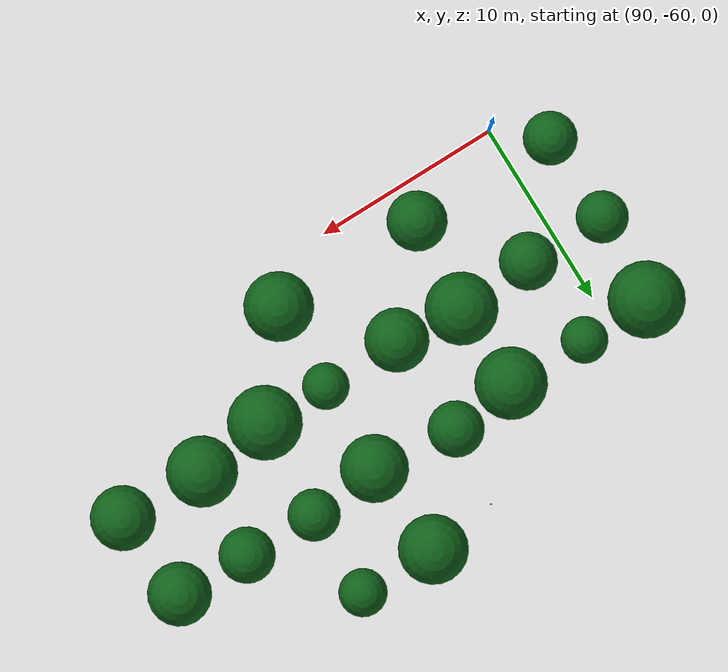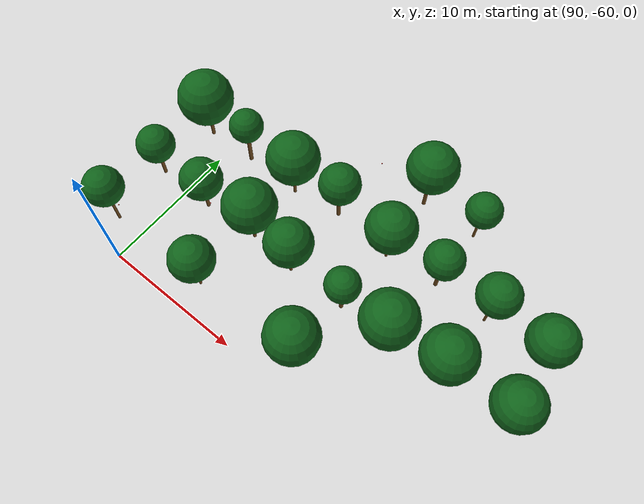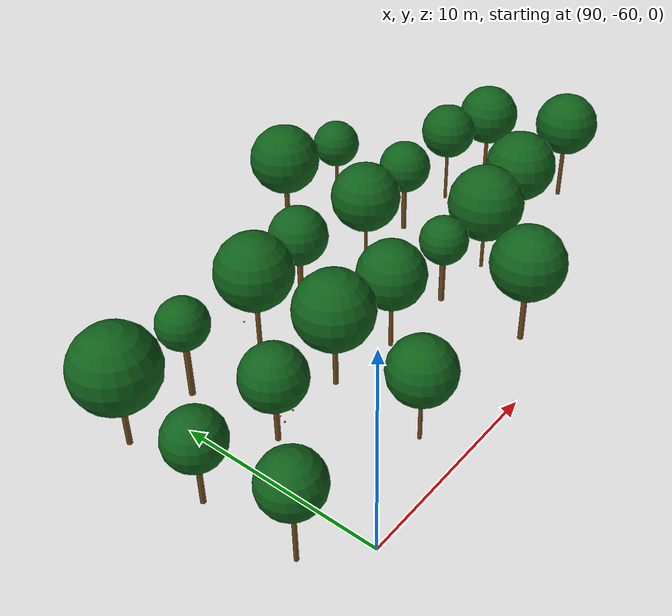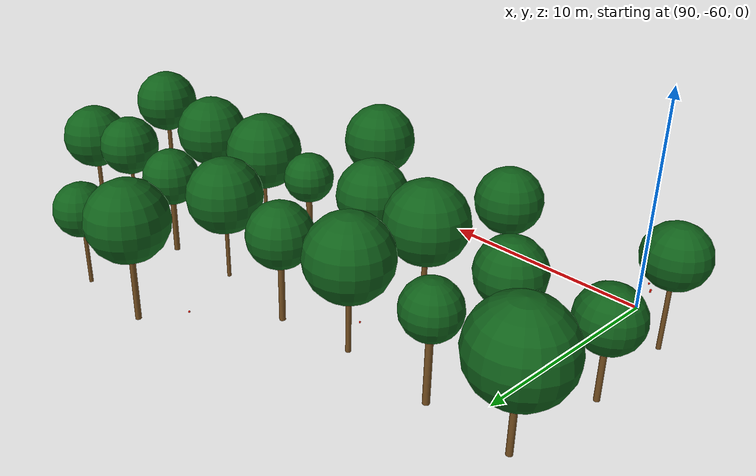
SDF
<sdf version="1.9">
 <world name="cheongsong_orchard">
  <model name="apple_tree_650">
   <static>true</static>
   <pose>87.80 -57.90 0 0 0 0</pose>
   <link name="link">
    <collision name="trunk_col">
     <pose>0 0 1.42 0 0 0</pose>
     <geometry><cylinder><radius>0.100</radius><length>2.84</length></cylinder></geometry>
    </collision>
    <visual name="trunk_vis">
     <pose>0 0 1.42 0 0 0</pose>
     <geometry><cylinder><radius>0.100</radius><length>2.84</length></cylinder></geometry>
     <material><ambient>0.35 0.22 0.08 1</ambient><diffuse>0.45 0.30 0.12 1</diffuse></material>
    </visual>
    <collision name="canopy_col">
     <pose>0 0 4.22 0 0 0</pose>
     <geometry><sphere><radius>1.38</radius></sphere></geometry>
    </collision>
    <visual name="canopy_vis">
     <pose>0 0 4.22 0 0 0</pose>
     <geometry><sphere><radius>1.38</radius></sphere></geometry>
     <material><ambient>0.04 0.28 0.06 1</ambient><diffuse>0.06 0.38 0.10 1</diffuse></material>
    </visual>
   </link>
  </model>
  <model name="apple_tree_652">
   <static>true</static>
   <pose>95.67 -57.91 0 0 0 0</pose>
   <link name="link">
    <collision name="trunk_col">
     <pose>0 0 1.14 0 0 0</pose>
     <geometry><cylinder><radius>0.093</radius><length>2.28</length></cylinder></geometry>
    </collision>
    <visual name="trunk_vis">
     <pose>0 0 1.14 0 0 0</pose>
     <geometry><cylinder><radius>0.093</radius><length>2.28</length></cylinder></geometry>
     <material><ambient>0.35 0.22 0.08 1</ambient><diffuse>0.45 0.30 0.12 1</diffuse></material>
    </visual>
    <collision name="canopy_col">
     <pose>0 0 3.82 0 0 0</pose>
     <geometry><sphere><radius>1.54</radius></sphere></geometry>
    </collision>
    <visual name="canopy_vis">
     <pose>0 0 3.82 0 0 0</pose>
     <geometry><sphere><radius>1.54</radius></sphere></geometry>
     <material><ambient>0.04 0.28 0.06 1</ambient><diffuse>0.06 0.38 0.10 1</diffuse></material>
    </visual>
   </link>
  </model>
  <model name="apple_tree_654">
   <static>true</static>
   <pose>103.85 -57.90 0 0 0 0</pose>
   <link name="link">
    <collision name="trunk_col">
     <pose>0 0 1.31 0 0 0</pose>
     <geometry><cylinder><radius>0.137</radius><length>2.62</length></cylinder></geometry>
    </collision>
    <visual name="trunk_vis">
     <pose>0 0 1.31 0 0 0</pose>
     <geometry><cylinder><radius>0.137</radius><length>2.62</length></cylinder></geometry>
     <material><ambient>0.35 0.22 0.08 1</ambient><diffuse>0.45 0.30 0.12 1</diffuse></material>
    </visual>
    <collision name="canopy_col">
     <pose>0 0 4.40 0 0 0</pose>
     <geometry><sphere><radius>1.78</radius></sphere></geometry>
    </collision>
    <visual name="canopy_vis">
     <pose>0 0 4.40 0 0 0</pose>
     <geometry><sphere><radius>1.78</radius></sphere></geometry>
     <material><ambient>0.04 0.28 0.06 1</ambient><diffuse>0.06 0.38 0.10 1</diffuse></material>
    </visual>
   </link>
  </model>
  <model name="apple_tree_709">
   <static>true</static>
   <pose>87.62 -53.17 0 0 0 0</pose>
   <link name="link">
    <collision name="trunk_col">
     <pose>0 0 1.10 0 0 0</pose>
     <geometry><cylinder><radius>0.124</radius><length>2.19</length></cylinder></geometry>
    </collision>
    <visual name="trunk_vis">
     <pose>0 0 1.10 0 0 0</pose>
     <geometry><cylinder><radius>0.124</radius><length>2.19</length></cylinder></geometry>
     <material><ambient>0.35 0.22 0.08 1</ambient><diffuse>0.45 0.30 0.12 1</diffuse></material>
    </visual>
    <collision name="canopy_col">
     <pose>0 0 3.54 0 0 0</pose>
     <geometry><sphere><radius>1.34</radius></sphere></geometry>
    </collision>
    <visual name="canopy_vis">
     <pose>0 0 3.54 0 0 0</pose>
     <geometry><sphere><radius>1.34</radius></sphere></geometry>
     <material><ambient>0.04 0.28 0.06 1</ambient><diffuse>0.06 0.38 0.10 1</diffuse></material>
    </visual>
   </link>
  </model>
  <model name="apple_tree_710">
   <static>true</static>
   <pose>91.96 -53.24 0 0 0 0</pose>
   <link name="link">
    <collision name="trunk_col">
     <pose>0 0 1.03 0 0 0</pose>
     <geometry><cylinder><radius>0.125</radius><length>2.05</length></cylinder></geometry>
    </collision>
    <visual name="trunk_vis">
     <pose>0 0 1.03 0 0 0</pose>
     <geometry><cylinder><radius>0.125</radius><length>2.05</length></cylinder></geometry>
     <material><ambient>0.35 0.22 0.08 1</ambient><diffuse>0.45 0.30 0.12 1</diffuse></material>
    </visual>
    <collision name="canopy_col">
     <pose>0 0 3.54 0 0 0</pose>
     <geometry><sphere><radius>1.49</radius></sphere></geometry>
    </collision>
    <visual name="canopy_vis">
     <pose>0 0 3.54 0 0 0</pose>
     <geometry><sphere><radius>1.49</radius></sphere></geometry>
     <material><ambient>0.04 0.28 0.06 1</ambient><diffuse>0.06 0.38 0.10 1</diffuse></material>
    </visual>
   </link>
  </model>
  <model name="apple_tree_711">
   <static>true</static>
   <pose>96.11 -52.98 0 0 0 0</pose>
   <link name="link">
    <collision name="trunk_col">
     <pose>0 0 1.18 0 0 0</pose>
     <geometry><cylinder><radius>0.124</radius><length>2.35</length></cylinder></geometry>
    </collision>
    <visual name="trunk_vis">
     <pose>0 0 1.18 0 0 0</pose>
     <geometry><cylinder><radius>0.124</radius><length>2.35</length></cylinder></geometry>
     <material><ambient>0.35 0.22 0.08 1</ambient><diffuse>0.45 0.30 0.12 1</diffuse></material>
    </visual>
    <collision name="canopy_col">
     <pose>0 0 4.21 0 0 0</pose>
     <geometry><sphere><radius>1.86</radius></sphere></geometry>
    </collision>
    <visual name="canopy_vis">
     <pose>0 0 4.21 0 0 0</pose>
     <geometry><sphere><radius>1.86</radius></sphere></geometry>
     <material><ambient>0.04 0.28 0.06 1</ambient><diffuse>0.06 0.38 0.10 1</diffuse></material>
    </visual>
   </link>
  </model>
  <model name="apple_tree_712">
   <static>true</static>
   <pose>99.70 -53.35 0 0 0 0</pose>
   <link name="link">
    <collision name="trunk_col">
     <pose>0 0 1.24 0 0 0</pose>
     <geometry><cylinder><radius>0.106</radius><length>2.48</length></cylinder></geometry>
    </collision>
    <visual name="trunk_vis">
     <pose>0 0 1.24 0 0 0</pose>
     <geometry><cylinder><radius>0.106</radius><length>2.48</length></cylinder></geometry>
     <material><ambient>0.35 0.22 0.08 1</ambient><diffuse>0.45 0.30 0.12 1</diffuse></material>
    </visual>
    <collision name="canopy_col">
     <pose>0 0 4.12 0 0 0</pose>
     <geometry><sphere><radius>1.64</radius></sphere></geometry>
    </collision>
    <visual name="canopy_vis">
     <pose>0 0 4.12 0 0 0</pose>
     <geometry><sphere><radius>1.64</radius></sphere></geometry>
     <material><ambient>0.04 0.28 0.06 1</ambient><diffuse>0.06 0.38 0.10 1</diffuse></material>
    </visual>
   </link>
  </model>
  <model name="apple_tree_713">
   <static>true</static>
   <pose>103.96 -53.27 0 0 0 0</pose>
   <link name="link">
    <collision name="trunk_col">
     <pose>0 0 1.20 0 0 0</pose>
     <geometry><cylinder><radius>0.147</radius><length>2.39</length></cylinder></geometry>
    </collision>
    <visual name="trunk_vis">
     <pose>0 0 1.20 0 0 0</pose>
     <geometry><cylinder><radius>0.147</radius><length>2.39</length></cylinder></geometry>
     <material><ambient>0.35 0.22 0.08 1</ambient><diffuse>0.45 0.30 0.12 1</diffuse></material>
    </visual>
    <collision name="canopy_col">
     <pose>0 0 3.59 0 0 0</pose>
     <geometry><sphere><radius>1.20</radius></sphere></geometry>
    </collision>
    <visual name="canopy_vis">
     <pose>0 0 3.59 0 0 0</pose>
     <geometry><sphere><radius>1.20</radius></sphere></geometry>
     <material><ambient>0.04 0.28 0.06 1</ambient><diffuse>0.06 0.38 0.10 1</diffuse></material>
    </visual>
   </link>
  </model>
  <model name="apple_tree_714">
   <static>true</static>
   <pose>107.53 -53.32 0 0 0 0</pose>
   <link name="link">
    <collision name="trunk_col">
     <pose>0 0 0.98 0 0 0</pose>
     <geometry><cylinder><radius>0.089</radius><length>1.97</length></cylinder></geometry>
    </collision>
    <visual name="trunk_vis">
     <pose>0 0 0.98 0 0 0</pose>
     <geometry><cylinder><radius>0.089</radius><length>1.97</length></cylinder></geometry>
     <material><ambient>0.35 0.22 0.08 1</ambient><diffuse>0.45 0.30 0.12 1</diffuse></material>
    </visual>
    <collision name="canopy_col">
     <pose>0 0 3.88 0 0 0</pose>
     <geometry><sphere><radius>1.91</radius></sphere></geometry>
    </collision>
    <visual name="canopy_vis">
     <pose>0 0 3.88 0 0 0</pose>
     <geometry><sphere><radius>1.91</radius></sphere></geometry>
     <material><ambient>0.04 0.28 0.06 1</ambient><diffuse>0.06 0.38 0.10 1</diffuse></material>
    </visual>
   </link>
  </model>
  <model name="apple_tree_715">
   <static>true</static>
   <pose>111.51 -52.90 0 0 0 0</pose>
   <link name="link">
    <collision name="trunk_col">
     <pose>0 0 1.08 0 0 0</pose>
     <geometry><cylinder><radius>0.102</radius><length>2.16</length></cylinder></geometry>
    </collision>
    <visual name="trunk_vis">
     <pose>0 0 1.08 0 0 0</pose>
     <geometry><cylinder><radius>0.102</radius><length>2.16</length></cylinder></geometry>
     <material><ambient>0.35 0.22 0.08 1</ambient><diffuse>0.45 0.30 0.12 1</diffuse></material>
    </visual>
    <collision name="canopy_col">
     <pose>0 0 3.98 0 0 0</pose>
     <geometry><sphere><radius>1.82</radius></sphere></geometry>
    </collision>
    <visual name="canopy_vis">
     <pose>0 0 3.98 0 0 0</pose>
     <geometry><sphere><radius>1.82</radius></sphere></geometry>
     <material><ambient>0.04 0.28 0.06 1</ambient><diffuse>0.06 0.38 0.10 1</diffuse></material>
    </visual>
   </link>
  </model>
  <model name="apple_tree_716">
   <static>true</static>
   <pose>116.08 -53.00 0 0 0 0</pose>
   <link name="link">
    <collision name="trunk_col">
     <pose>0 0 1.42 0 0 0</pose>
     <geometry><cylinder><radius>0.116</radius><length>2.85</length></cylinder></geometry>
    </collision>
    <visual name="trunk_vis">
     <pose>0 0 1.42 0 0 0</pose>
     <geometry><cylinder><radius>0.116</radius><length>2.85</length></cylinder></geometry>
     <material><ambient>0.35 0.22 0.08 1</ambient><diffuse>0.45 0.30 0.12 1</diffuse></material>
    </visual>
    <collision name="canopy_col">
     <pose>0 0 4.50 0 0 0</pose>
     <geometry><sphere><radius>1.66</radius></sphere></geometry>
    </collision>
    <visual name="canopy_vis">
     <pose>0 0 4.50 0 0 0</pose>
     <geometry><sphere><radius>1.66</radius></sphere></geometry>
     <material><ambient>0.04 0.28 0.06 1</ambient><diffuse>0.06 0.38 0.10 1</diffuse></material>
    </visual>
   </link>
  </model>
  <model name="apple_tree_768">
   <static>true</static>
   <pose>87.97 -48.46 0 0 0 0</pose>
   <link name="link">
    <collision name="trunk_col">
     <pose>0 0 1.13 0 0 0</pose>
     <geometry><cylinder><radius>0.131</radius><length>2.25</length></cylinder></geometry>
    </collision>
    <visual name="trunk_vis">
     <pose>0 0 1.13 0 0 0</pose>
     <geometry><cylinder><radius>0.131</radius><length>2.25</length></cylinder></geometry>
     <material><ambient>0.35 0.22 0.08 1</ambient><diffuse>0.45 0.30 0.12 1</diffuse></material>
    </visual>
    <collision name="canopy_col">
     <pose>0 0 4.22 0 0 0</pose>
     <geometry><sphere><radius>1.97</radius></sphere></geometry>
    </collision>
    <visual name="canopy_vis">
     <pose>0 0 4.22 0 0 0</pose>
     <geometry><sphere><radius>1.97</radius></sphere></geometry>
     <material><ambient>0.04 0.28 0.06 1</ambient><diffuse>0.06 0.38 0.10 1</diffuse></material>
    </visual>
   </link>
  </model>
  <model name="apple_tree_769">
   <static>true</static>
   <pose>91.68 -48.38 0 0 0 0</pose>
   <link name="link">
    <collision name="trunk_col">
     <pose>0 0 1.41 0 0 0</pose>
     <geometry><cylinder><radius>0.147</radius><length>2.83</length></cylinder></geometry>
    </collision>
    <visual name="trunk_vis">
     <pose>0 0 1.41 0 0 0</pose>
     <geometry><cylinder><radius>0.147</radius><length>2.83</length></cylinder></geometry>
     <material><ambient>0.35 0.22 0.08 1</ambient><diffuse>0.45 0.30 0.12 1</diffuse></material>
    </visual>
    <collision name="canopy_col">
     <pose>0 0 4.03 0 0 0</pose>
     <geometry><sphere><radius>1.20</radius></sphere></geometry>
    </collision>
    <visual name="canopy_vis">
     <pose>0 0 4.03 0 0 0</pose>
     <geometry><sphere><radius>1.20</radius></sphere></geometry>
     <material><ambient>0.04 0.28 0.06 1</ambient><diffuse>0.06 0.38 0.10 1</diffuse></material>
    </visual>
   </link>
  </model>
  <model name="apple_tree_770">
   <static>true</static>
   <pose>95.97 -48.48 0 0 0 0</pose>
   <link name="link">
    <collision name="trunk_col">
     <pose>0 0 1.22 0 0 0</pose>
     <geometry><cylinder><radius>0.115</radius><length>2.44</length></cylinder></geometry>
    </collision>
    <visual name="trunk_vis">
     <pose>0 0 1.22 0 0 0</pose>
     <geometry><cylinder><radius>0.115</radius><length>2.44</length></cylinder></geometry>
     <material><ambient>0.35 0.22 0.08 1</ambient><diffuse>0.45 0.30 0.12 1</diffuse></material>
    </visual>
    <collision name="canopy_col">
     <pose>0 0 4.28 0 0 0</pose>
     <geometry><sphere><radius>1.85</radius></sphere></geometry>
    </collision>
    <visual name="canopy_vis">
     <pose>0 0 4.28 0 0 0</pose>
     <geometry><sphere><radius>1.85</radius></sphere></geometry>
     <material><ambient>0.04 0.28 0.06 1</ambient><diffuse>0.06 0.38 0.10 1</diffuse></material>
    </visual>
   </link>
  </model>
  <model name="apple_tree_771">
   <static>true</static>
   <pose>99.53 -47.98 0 0 0 0</pose>
   <link name="link">
    <collision name="trunk_col">
     <pose>0 0 1.30 0 0 0</pose>
     <geometry><cylinder><radius>0.139</radius><length>2.60</length></cylinder></geometry>
    </collision>
    <visual name="trunk_vis">
     <pose>0 0 1.30 0 0 0</pose>
     <geometry><cylinder><radius>0.139</radius><length>2.60</length></cylinder></geometry>
     <material><ambient>0.35 0.22 0.08 1</ambient><diffuse>0.45 0.30 0.12 1</diffuse></material>
    </visual>
    <collision name="canopy_col">
     <pose>0 0 4.04 0 0 0</pose>
     <geometry><sphere><radius>1.44</radius></sphere></geometry>
    </collision>
    <visual name="canopy_vis">
     <pose>0 0 4.04 0 0 0</pose>
     <geometry><sphere><radius>1.44</radius></sphere></geometry>
     <material><ambient>0.04 0.28 0.06 1</ambient><diffuse>0.06 0.38 0.10 1</diffuse></material>
    </visual>
   </link>
  </model>
  <model name="apple_tree_772">
   <static>true</static>
   <pose>104.06 -48.46 0 0 0 0</pose>
   <link name="link">
    <collision name="trunk_col">
     <pose>0 0 1.18 0 0 0</pose>
     <geometry><cylinder><radius>0.092</radius><length>2.36</length></cylinder></geometry>
    </collision>
    <visual name="trunk_vis">
     <pose>0 0 1.18 0 0 0</pose>
     <geometry><cylinder><radius>0.092</radius><length>2.36</length></cylinder></geometry>
     <material><ambient>0.35 0.22 0.08 1</ambient><diffuse>0.45 0.30 0.12 1</diffuse></material>
    </visual>
    <collision name="canopy_col">
     <pose>0 0 4.09 0 0 0</pose>
     <geometry><sphere><radius>1.74</radius></sphere></geometry>
    </collision>
    <visual name="canopy_vis">
     <pose>0 0 4.09 0 0 0</pose>
     <geometry><sphere><radius>1.74</radius></sphere></geometry>
     <material><ambient>0.04 0.28 0.06 1</ambient><diffuse>0.06 0.38 0.10 1</diffuse></material>
    </visual>
   </link>
  </model>
  <model name="apple_tree_773">
   <static>true</static>
   <pose>107.88 -48.07 0 0 0 0</pose>
   <link name="link">
    <collision name="trunk_col">
     <pose>0 0 1.27 0 0 0</pose>
     <geometry><cylinder><radius>0.135</radius><length>2.53</length></cylinder></geometry>
    </collision>
    <visual name="trunk_vis">
     <pose>0 0 1.27 0 0 0</pose>
     <geometry><cylinder><radius>0.135</radius><length>2.53</length></cylinder></geometry>
     <material><ambient>0.35 0.22 0.08 1</ambient><diffuse>0.45 0.30 0.12 1</diffuse></material>
    </visual>
    <collision name="canopy_col">
     <pose>0 0 3.87 0 0 0</pose>
     <geometry><sphere><radius>1.34</radius></sphere></geometry>
    </collision>
    <visual name="canopy_vis">
     <pose>0 0 3.87 0 0 0</pose>
     <geometry><sphere><radius>1.34</radius></sphere></geometry>
     <material><ambient>0.04 0.28 0.06 1</ambient><diffuse>0.06 0.38 0.10 1</diffuse></material>
    </visual>
   </link>
  </model>
  <model name="apple_tree_774">
   <static>true</static>
   <pose>111.78 -48.14 0 0 0 0</pose>
   <link name="link">
    <collision name="trunk_col">
     <pose>0 0 1.43 0 0 0</pose>
     <geometry><cylinder><radius>0.087</radius><length>2.86</length></cylinder></geometry>
    </collision>
    <visual name="trunk_vis">
     <pose>0 0 1.43 0 0 0</pose>
     <geometry><cylinder><radius>0.087</radius><length>2.86</length></cylinder></geometry>
     <material><ambient>0.35 0.22 0.08 1</ambient><diffuse>0.45 0.30 0.12 1</diffuse></material>
    </visual>
    <collision name="canopy_col">
     <pose>0 0 4.30 0 0 0</pose>
     <geometry><sphere><radius>1.44</radius></sphere></geometry>
    </collision>
    <visual name="canopy_vis">
     <pose>0 0 4.30 0 0 0</pose>
     <geometry><sphere><radius>1.44</radius></sphere></geometry>
     <material><ambient>0.04 0.28 0.06 1</ambient><diffuse>0.06 0.38 0.10 1</diffuse></material>
    </visual>
   </link>
  </model>
  <model name="apple_tree_775">
   <static>true</static>
   <pose>115.73 -48.26 0 0 0 0</pose>
   <link name="link">
    <collision name="trunk_col">
     <pose>0 0 1.01 0 0 0</pose>
     <geometry><cylinder><radius>0.110</radius><length>2.02</length></cylinder></geometry>
    </collision>
    <visual name="trunk_vis">
     <pose>0 0 1.01 0 0 0</pose>
     <geometry><cylinder><radius>0.110</radius><length>2.02</length></cylinder></geometry>
     <material><ambient>0.35 0.22 0.08 1</ambient><diffuse>0.45 0.30 0.12 1</diffuse></material>
    </visual>
    <collision name="canopy_col">
     <pose>0 0 3.66 0 0 0</pose>
     <geometry><sphere><radius>1.64</radius></sphere></geometry>
    </collision>
    <visual name="canopy_vis">
     <pose>0 0 3.66 0 0 0</pose>
     <geometry><sphere><radius>1.64</radius></sphere></geometry>
     <material><ambient>0.04 0.28 0.06 1</ambient><diffuse>0.06 0.38 0.10 1</diffuse></material>
    </visual>
   </link>
  </model>
  <model name="apple_tree_831">
   <static>true</static>
   <pose>103.68 -43.47 0 0 0 0</pose>
   <link name="link">
    <collision name="trunk_col">
     <pose>0 0 1.42 0 0 0</pose>
     <geometry><cylinder><radius>0.132</radius><length>2.85</length></cylinder></geometry>
    </collision>
    <visual name="trunk_vis">
     <pose>0 0 1.42 0 0 0</pose>
     <geometry><cylinder><radius>0.132</radius><length>2.85</length></cylinder></geometry>
     <material><ambient>0.35 0.22 0.08 1</ambient><diffuse>0.45 0.30 0.12 1</diffuse></material>
    </visual>
    <collision name="canopy_col">
     <pose>0 0 4.63 0 0 0</pose>
     <geometry><sphere><radius>1.78</radius></sphere></geometry>
    </collision>
    <visual name="canopy_vis">
     <pose>0 0 4.63 0 0 0</pose>
     <geometry><sphere><radius>1.78</radius></sphere></geometry>
     <material><ambient>0.04 0.28 0.06 1</ambient><diffuse>0.06 0.38 0.10 1</diffuse></material>
    </visual>
   </link>
  </model>
  <model name="apple_tree_832">
   <static>true</static>
   <pose>107.85 -43.45 0 0 0 0</pose>
   <link name="link">
    <collision name="trunk_col">
     <pose>0 0 1.21 0 0 0</pose>
     <geometry><cylinder><radius>0.092</radius><length>2.41</length></cylinder></geometry>
    </collision>
    <visual name="trunk_vis">
     <pose>0 0 1.21 0 0 0</pose>
     <geometry><cylinder><radius>0.092</radius><length>2.41</length></cylinder></geometry>
     <material><ambient>0.35 0.22 0.08 1</ambient><diffuse>0.45 0.30 0.12 1</diffuse></material>
    </visual>
    <collision name="canopy_col">
     <pose>0 0 3.65 0 0 0</pose>
     <geometry><sphere><radius>1.24</radius></sphere></geometry>
    </collision>
    <visual name="canopy_vis">
     <pose>0 0 3.65 0 0 0</pose>
     <geometry><sphere><radius>1.24</radius></sphere></geometry>
     <material><ambient>0.04 0.28 0.06 1</ambient><diffuse>0.06 0.38 0.10 1</diffuse></material>
    </visual>
   </link>
  </model>
  <model name="apple_650_0">
   <static>true</static>
   <pose>88.30 -57.38 2.70 0 0 0</pose>
   <link name="link">
    <visual name="visual">
     <geometry><sphere><radius>0.04</radius></sphere></geometry>
     <material><ambient>0.7 0.05 0.02 1</ambient><diffuse>0.9 0.10 0.05 1</diffuse></material>
    </visual>
   </link>
  </model>
  <model name="apple_650_1">
   <static>true</static>
   <pose>88.11 -58.02 2.63 0 0 0</pose>
   <link name="link">
    <visual name="visual">
     <geometry><sphere><radius>0.04</radius></sphere></geometry>
     <material><ambient>0.7 0.05 0.02 1</ambient><diffuse>0.9 0.10 0.05 1</diffuse></material>
    </visual>
   </link>
  </model>
  <model name="apple_650_3">
   <static>true</static>
   <pose>88.33 -57.41 2.60 0 0 0</pose>
   <link name="link">
    <visual name="visual">
     <geometry><sphere><radius>0.04</radius></sphere></geometry>
     <material><ambient>0.7 0.05 0.02 1</ambient><diffuse>0.9 0.10 0.05 1</diffuse></material>
    </visual>
   </link>
  </model>
  <model name="apple_650_4">
   <static>true</static>
   <pose>88.64 -57.85 2.66 0 0 0</pose>
   <link name="link">
    <visual name="visual">
     <geometry><sphere><radius>0.04</radius></sphere></geometry>
     <material><ambient>0.7 0.05 0.02 1</ambient><diffuse>0.9 0.10 0.05 1</diffuse></material>
    </visual>
   </link>
  </model>
  <model name="apple_710_0">
   <static>true</static>
   <pose>91.76 -53.89 1.57 0 0 0</pose>
   <link name="link">
    <visual name="visual">
     <geometry><sphere><radius>0.04</radius></sphere></geometry>
     <material><ambient>0.7 0.05 0.02 1</ambient><diffuse>0.9 0.10 0.05 1</diffuse></material>
    </visual>
   </link>
  </model>
  <model name="apple_710_1">
   <static>true</static>
   <pose>92.17 -54.00 1.98 0 0 0</pose>
   <link name="link">
    <visual name="visual">
     <geometry><sphere><radius>0.04</radius></sphere></geometry>
     <material><ambient>0.7 0.05 0.02 1</ambient><diffuse>0.9 0.10 0.05 1</diffuse></material>
    </visual>
   </link>
  </model>
  <model name="apple_710_2">
   <static>true</static>
   <pose>91.53 -53.89 2.08 0 0 0</pose>
   <link name="link">
    <visual name="visual">
     <geometry><sphere><radius>0.04</radius></sphere></geometry>
     <material><ambient>0.7 0.05 0.02 1</ambient><diffuse>0.9 0.10 0.05 1</diffuse></material>
    </visual>
   </link>
  </model>
  <model name="apple_710_3">
   <static>true</static>
   <pose>92.97 -53.69 2.03 0 0 0</pose>
   <link name="link">
    <visual name="visual">
     <geometry><sphere><radius>0.04</radius></sphere></geometry>
     <material><ambient>0.7 0.05 0.02 1</ambient><diffuse>0.9 0.10 0.05 1</diffuse></material>
    </visual>
   </link>
  </model>
  <model name="apple_770_0">
   <static>true</static>
   <pose>96.40 -48.87 2.46 0 0 0</pose>
   <link name="link">
    <visual name="visual">
     <geometry><sphere><radius>0.04</radius></sphere></geometry>
     <material><ambient>0.7 0.05 0.02 1</ambient><diffuse>0.9 0.10 0.05 1</diffuse></material>
    </visual>
   </link>
  </model>
  <model name="apple_770_1">
   <static>true</static>
   <pose>95.20 -48.36 1.80 0 0 0</pose>
   <link name="link">
    <visual name="visual">
     <geometry><sphere><radius>0.04</radius></sphere></geometry>
     <material><ambient>0.7 0.05 0.02 1</ambient><diffuse>0.9 0.10 0.05 1</diffuse></material>
    </visual>
   </link>
  </model>
  <model name="apple_770_2">
   <static>true</static>
   <pose>95.49 -48.83 2.40 0 0 0</pose>
   <link name="link">
    <visual name="visual">
     <geometry><sphere><radius>0.04</radius></sphere></geometry>
     <material><ambient>0.7 0.05 0.02 1</ambient><diffuse>0.9 0.10 0.05 1</diffuse></material>
    </visual>
   </link>
  </model>
  <model name="apple_770_3">
   <static>true</static>
   <pose>95.27 -49.14 2.76 0 0 0</pose>
   <link name="link">
    <visual name="visual">
     <geometry><sphere><radius>0.04</radius></sphere></geometry>
     <material><ambient>0.7 0.05 0.02 1</ambient><diffuse>0.9 0.10 0.05 1</diffuse></material>
    </visual>
   </link>
  </model>
  <model name="apple_770_4">
   <static>true</static>
   <pose>96.42 -48.34 2.54 0 0 0</pose>
   <link name="link">
    <visual name="visual">
     <geometry><sphere><radius>0.04</radius></sphere></geometry>
     <material><ambient>0.7 0.05 0.02 1</ambient><diffuse>0.9 0.10 0.05 1</diffuse></material>
    </visual>
   </link>
  </model>
  <model name="apple_830_1">
   <static>true</static>
   <pose>100.01 -43.78 1.93 0 0 0</pose>
   <link name="link">
    <visual name="visual">
     <geometry><sphere><radius>0.04</radius></sphere></geometry>
     <material><ambient>0.7 0.05 0.02 1</ambient><diffuse>0.9 0.10 0.05 1</diffuse></material>
    </visual>
   </link>
  </model>
 </world>
</sdf>
